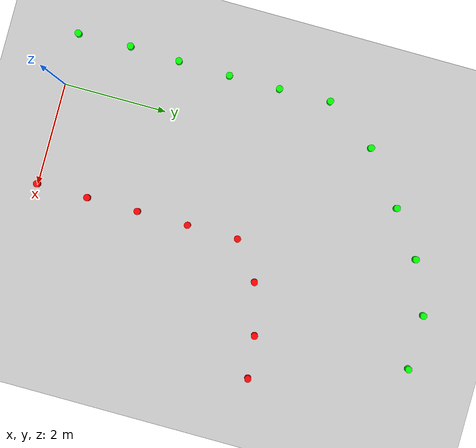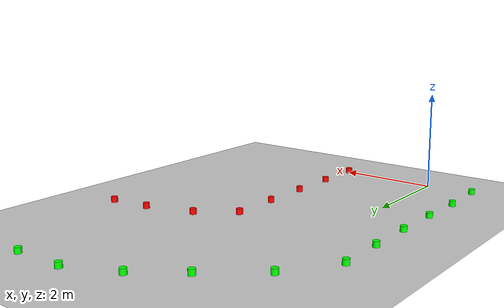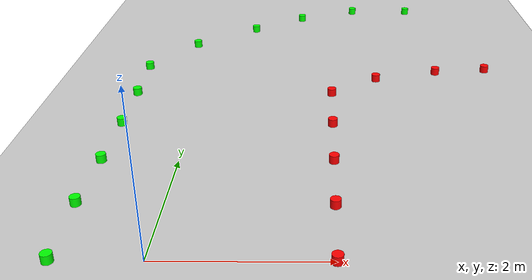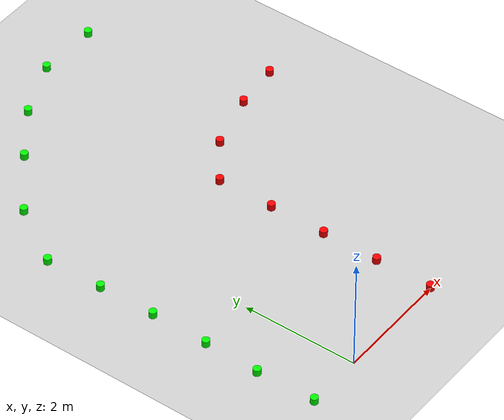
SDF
<sdf version="1.7">
 <world name="default">
  <light name="sun" type="directional">
   <pose>0 0 10 0 -0 0</pose>
   <diffuse>0.8 0.8 0.8 1</diffuse>
   <specular>0.2 0.2 0.2 1</specular>
   <attenuation>
    <range>1000</range>
    <constant>0.9</constant>
    <linear>0.01</linear>
    <quadratic>0.001</quadratic>
   </attenuation>
   <direction>-0.5 0.1 -0.9</direction>
   <spot><inner_angle>0</inner_angle><outer_angle>0</outer_angle><falloff>0</falloff></spot>
  </light>
  <model name="ground_plane">
   <static>1</static>
   <link name="link">
    <collision name="collision">
     <geometry><plane><normal>0 0 1</normal><size>100 100</size></plane></geometry>
     <surface>
      <contact><collide_bitmask>65535</collide_bitmask></contact>
      <friction><ode><mu>100</mu><mu2>50</mu2></ode></friction>
     </surface>
    </collision>
    <visual name="visual">
     <cast_shadows>0</cast_shadows>
     <geometry><plane><normal>0 0 1</normal><size>100 100</size></plane></geometry>
     <material>
      <script><uri>file://media/materials/scripts/gazebo.material</uri><name>Gazebo/Grey</name></script>
     </material>
    </visual>
   </link>
  </model>
  <model name="latinha_verm">
   <link name="link">
    <inertial>
     <mass>1</mass>
     <inertia><ixx>0.145833</ixx><ixy>0</ixy><ixz>0</ixz><iyy>0.145833</iyy><iyz>0</iyz><izz>0.125</izz></inertia>
    </inertial>
    <visual name="visual">
     <geometry><cylinder><radius>0.066</radius><length>0.114</length></cylinder></geometry>
     <material>
      <script><name>Gazebo/Gray</name><uri>file://media/materials/scripts/gazebo.material</uri></script>
      <shader type="pixel"><normal_map>__default__</normal_map></shader>
      <ambient>1 0 0 1</ambient>
      <diffuse>1 0 0 1</diffuse>
      <specular>0.1 0.1 0.1 1</specular>
      <emissive>0 0 0 1</emissive>
     </material>
    </visual>
    <collision name="collision">
     <geometry><cylinder><radius>0.05</radius><length>0.1</length></cylinder></geometry>
     <surface>
      <friction>
       <ode><mu>1</mu><mu2>1</mu2><fdir1>0 0 0</fdir1><slip1>0</slip1><slip2>0</slip2></ode>
       <torsional>
        <coefficient>1</coefficient>
        <patch_radius>0</patch_radius>
        <surface_radius>0</surface_radius>
        <use_patch_radius>1</use_patch_radius>
        <ode><slip>0</slip></ode>
       </torsional>
      </friction>
      <bounce><restitution_coefficient>0</restitution_coefficient><threshold>1e+06</threshold></bounce>
      <contact>
       <collide_without_contact>0</collide_without_contact>
       <collide_without_contact_bitmask>1</collide_without_contact_bitmask>
       <collide_bitmask>1</collide_bitmask>
       <ode>
        <soft_cfm>0</soft_cfm>
        <soft_erp>0.2</soft_erp>
        <kp>1e+13</kp>
        <kd>1</kd>
        <max_vel>0.01</max_vel>
        <min_depth>0</min_depth>
       </ode>
       <bullet>
        <split_impulse>1</split_impulse>
        <split_impulse_penetration_threshold>-0.01</split_impulse_penetration_threshold>
        <soft_cfm>0</soft_cfm>
        <soft_erp>0.2</soft_erp>
        <kp>1e+13</kp>
        <kd>1</kd>
       </bullet>
      </contact>
     </surface>
    </collision>
   </link>
   <static>0</static>
   <pose>3.70951 4.81025 0.04999 0 -0 3e-05</pose>
  </model>
  <model name="latinha_verde">
   <link name="link">
    <inertial>
     <mass>1</mass>
     <inertia><ixx>0.145833</ixx><ixy>0</ixy><ixz>0</ixz><iyy>0.145833</iyy><iyz>0</iyz><izz>0.125</izz></inertia>
    </inertial>
    <visual name="visual">
     <geometry><cylinder><radius>0.066</radius><length>0.114</length></cylinder></geometry>
     <material>
      <script><name>Gazebo/Gray</name><uri>file://media/materials/scripts/gazebo.material</uri></script>
      <shader type="pixel"><normal_map>__default__</normal_map></shader>
      <ambient>0 1 0 1</ambient>
      <diffuse>0 1 0 1</diffuse>
      <specular>0.1 0.1 0.1 1</specular>
      <emissive>0 0 0 1</emissive>
     </material>
    </visual>
    <collision name="collision">
     <geometry><cylinder><radius>0.05</radius><length>0.1</length></cylinder></geometry>
     <surface>
      <friction>
       <ode><mu>1</mu><mu2>1</mu2><fdir1>0 0 0</fdir1><slip1>0</slip1><slip2>0</slip2></ode>
       <torsional>
        <coefficient>1</coefficient>
        <patch_radius>0</patch_radius>
        <surface_radius>0</surface_radius>
        <use_patch_radius>1</use_patch_radius>
        <ode><slip>0</slip></ode>
       </torsional>
      </friction>
      <bounce><restitution_coefficient>0</restitution_coefficient><threshold>1e+06</threshold></bounce>
      <contact>
       <collide_without_contact>0</collide_without_contact>
       <collide_without_contact_bitmask>1</collide_without_contact_bitmask>
       <collide_bitmask>1</collide_bitmask>
       <ode>
        <soft_cfm>0</soft_cfm>
        <soft_erp>0.2</soft_erp>
        <kp>1e+13</kp>
        <kd>1</kd>
        <max_vel>0.01</max_vel>
        <min_depth>0</min_depth>
       </ode>
       <bullet>
        <split_impulse>1</split_impulse>
        <split_impulse_penetration_threshold>-0.01</split_impulse_penetration_threshold>
        <soft_cfm>0</soft_cfm>
        <soft_erp>0.2</soft_erp>
        <kp>1e+13</kp>
        <kd>1</kd>
       </bullet>
      </contact>
     </surface>
    </collision>
   </link>
   <static>0</static>
   <pose>2.47505 7.83889 0.04999 0 -0 7.4e-05</pose>
  </model>
  <gravity>0 0 -9.8</gravity>
  <magnetic_field>6e-06 2.3e-05 -4.2e-05</magnetic_field>
  <atmosphere type="adiabatic"/>
  <physics type="ode">
   <max_step_size>0.001</max_step_size>
   <real_time_factor>1</real_time_factor>
   <real_time_update_rate>1000</real_time_update_rate>
  </physics>
  <scene><ambient>0.4 0.4 0.4 1</ambient><background>0.7 0.7 0.7 1</background><shadows>1</shadows></scene>
  <spherical_coordinates>
   <surface_model>EARTH_WGS84</surface_model>
   <latitude_deg>0</latitude_deg>
   <longitude_deg>0</longitude_deg>
   <elevation>0</elevation>
   <heading_deg>0</heading_deg>
  </spherical_coordinates>
  <model name="latinha_verm_clone">
   <link name="link">
    <inertial>
     <mass>1</mass>
     <inertia><ixx>0.145833</ixx><ixy>0</ixy><ixz>0</ixz><iyy>0.145833</iyy><iyz>0</iyz><izz>0.125</izz></inertia>
    </inertial>
    <visual name="visual">
     <geometry><cylinder><radius>0.066</radius><length>0.114</length></cylinder></geometry>
     <material>
      <script><name>Gazebo/Gray</name><uri>file://media/materials/scripts/gazebo.material</uri></script>
      <shader type="pixel"><normal_map>__default__</normal_map></shader>
      <ambient>1 0 0 1</ambient>
      <diffuse>1 0 0 1</diffuse>
      <specular>0.1 0.1 0.1 1</specular>
      <emissive>0 0 0 1</emissive>
     </material>
    </visual>
    <collision name="collision">
     <geometry><cylinder><radius>0.05</radius><length>0.1</length></cylinder></geometry>
     <surface>
      <friction>
       <ode><mu>1</mu><mu2>1</mu2><fdir1>0 0 0</fdir1><slip1>0</slip1><slip2>0</slip2></ode>
       <torsional>
        <coefficient>1</coefficient>
        <patch_radius>0</patch_radius>
        <surface_radius>0</surface_radius>
        <use_patch_radius>1</use_patch_radius>
        <ode><slip>0</slip></ode>
       </torsional>
      </friction>
      <bounce><restitution_coefficient>0</restitution_coefficient><threshold>1e+06</threshold></bounce>
      <contact>
       <collide_without_contact>0</collide_without_contact>
       <collide_without_contact_bitmask>1</collide_without_contact_bitmask>
       <collide_bitmask>1</collide_bitmask>
       <ode>
        <soft_cfm>0</soft_cfm>
        <soft_erp>0.2</soft_erp>
        <kp>1e+13</kp>
        <kd>1</kd>
        <max_vel>0.01</max_vel>
        <min_depth>0</min_depth>
       </ode>
       <bullet>
        <split_impulse>1</split_impulse>
        <split_impulse_penetration_threshold>-0.01</split_impulse_penetration_threshold>
        <soft_cfm>0</soft_cfm>
        <soft_erp>0.2</soft_erp>
        <kp>1e+13</kp>
        <kd>1</kd>
       </bullet>
      </contact>
     </surface>
    </collision>
   </link>
   <static>0</static>
   <pose>2 0 0.049995 0 -0 3.3e-05</pose>
  </model>
  <model name="latinha_verm_clone_0">
   <link name="link">
    <inertial>
     <mass>1</mass>
     <inertia><ixx>0.145833</ixx><ixy>0</ixy><ixz>0</ixz><iyy>0.145833</iyy><iyz>0</iyz><izz>0.125</izz></inertia>
    </inertial>
    <visual name="visual">
     <geometry><cylinder><radius>0.066</radius><length>0.114</length></cylinder></geometry>
     <material>
      <script><name>Gazebo/Gray</name><uri>file://media/materials/scripts/gazebo.material</uri></script>
      <shader type="pixel"><normal_map>__default__</normal_map></shader>
      <ambient>1 0 0 1</ambient>
      <diffuse>1 0 0 1</diffuse>
      <specular>0.1 0.1 0.1 1</specular>
      <emissive>0 0 0 1</emissive>
     </material>
    </visual>
    <collision name="collision">
     <geometry><cylinder><radius>0.05</radius><length>0.1</length></cylinder></geometry>
     <surface>
      <friction>
       <ode><mu>1</mu><mu2>1</mu2><fdir1>0 0 0</fdir1><slip1>0</slip1><slip2>0</slip2></ode>
       <torsional>
        <coefficient>1</coefficient>
        <patch_radius>0</patch_radius>
        <surface_radius>0</surface_radius>
        <use_patch_radius>1</use_patch_radius>
        <ode><slip>0</slip></ode>
       </torsional>
      </friction>
      <bounce><restitution_coefficient>0</restitution_coefficient><threshold>1e+06</threshold></bounce>
      <contact>
       <collide_without_contact>0</collide_without_contact>
       <collide_without_contact_bitmask>1</collide_without_contact_bitmask>
       <collide_bitmask>1</collide_bitmask>
       <ode>
        <soft_cfm>0</soft_cfm>
        <soft_erp>0.2</soft_erp>
        <kp>1e+13</kp>
        <kd>1</kd>
        <max_vel>0.01</max_vel>
        <min_depth>0</min_depth>
       </ode>
       <bullet>
        <split_impulse>1</split_impulse>
        <split_impulse_penetration_threshold>-0.01</split_impulse_penetration_threshold>
        <soft_cfm>0</soft_cfm>
        <soft_erp>0.2</soft_erp>
        <kp>1e+13</kp>
        <kd>1</kd>
       </bullet>
      </contact>
     </surface>
    </collision>
   </link>
   <static>0</static>
   <pose>2 1 0.049995 0 -0 8.9e-05</pose>
  </model>
  <model name="latinha_verm_clone_1">
   <link name="link">
    <inertial>
     <mass>1</mass>
     <inertia><ixx>0.145833</ixx><ixy>0</ixy><ixz>0</ixz><iyy>0.145833</iyy><iyz>0</iyz><izz>0.125</izz></inertia>
    </inertial>
    <visual name="visual">
     <geometry><cylinder><radius>0.066</radius><length>0.114</length></cylinder></geometry>
     <material>
      <script><name>Gazebo/Gray</name><uri>file://media/materials/scripts/gazebo.material</uri></script>
      <shader type="pixel"><normal_map>__default__</normal_map></shader>
      <ambient>1 0 0 1</ambient>
      <diffuse>1 0 0 1</diffuse>
      <specular>0.1 0.1 0.1 1</specular>
      <emissive>0 0 0 1</emissive>
     </material>
    </visual>
    <collision name="collision">
     <geometry><cylinder><radius>0.05</radius><length>0.1</length></cylinder></geometry>
     <surface>
      <friction>
       <ode><mu>1</mu><mu2>1</mu2><fdir1>0 0 0</fdir1><slip1>0</slip1><slip2>0</slip2></ode>
       <torsional>
        <coefficient>1</coefficient>
        <patch_radius>0</patch_radius>
        <surface_radius>0</surface_radius>
        <use_patch_radius>1</use_patch_radius>
        <ode><slip>0</slip></ode>
       </torsional>
      </friction>
      <bounce><restitution_coefficient>0</restitution_coefficient><threshold>1e+06</threshold></bounce>
      <contact>
       <collide_without_contact>0</collide_without_contact>
       <collide_without_contact_bitmask>1</collide_without_contact_bitmask>
       <collide_bitmask>1</collide_bitmask>
       <ode>
        <soft_cfm>0</soft_cfm>
        <soft_erp>0.2</soft_erp>
        <kp>1e+13</kp>
        <kd>1</kd>
        <max_vel>0.01</max_vel>
        <min_depth>0</min_depth>
       </ode>
       <bullet>
        <split_impulse>1</split_impulse>
        <split_impulse_penetration_threshold>-0.01</split_impulse_penetration_threshold>
        <soft_cfm>0</soft_cfm>
        <soft_erp>0.2</soft_erp>
        <kp>1e+13</kp>
        <kd>1</kd>
       </bullet>
      </contact>
     </surface>
    </collision>
   </link>
   <static>0</static>
   <pose>2 2 0.049994 0 -0 8.5e-05</pose>
  </model>
  <model name="latinha_verm_clone_2">
   <link name="link">
    <inertial>
     <mass>1</mass>
     <inertia><ixx>0.145833</ixx><ixy>0</ixy><ixz>0</ixz><iyy>0.145833</iyy><iyz>0</iyz><izz>0.125</izz></inertia>
    </inertial>
    <visual name="visual">
     <geometry><cylinder><radius>0.066</radius><length>0.114</length></cylinder></geometry>
     <material>
      <script><name>Gazebo/Gray</name><uri>file://media/materials/scripts/gazebo.material</uri></script>
      <shader type="pixel"><normal_map>__default__</normal_map></shader>
      <ambient>1 0 0 1</ambient>
      <diffuse>1 0 0 1</diffuse>
      <specular>0.1 0.1 0.1 1</specular>
      <emissive>0 0 0 1</emissive>
     </material>
    </visual>
    <collision name="collision">
     <geometry><cylinder><radius>0.05</radius><length>0.1</length></cylinder></geometry>
     <surface>
      <friction>
       <ode><mu>1</mu><mu2>1</mu2><fdir1>0 0 0</fdir1><slip1>0</slip1><slip2>0</slip2></ode>
       <torsional>
        <coefficient>1</coefficient>
        <patch_radius>0</patch_radius>
        <surface_radius>0</surface_radius>
        <use_patch_radius>1</use_patch_radius>
        <ode><slip>0</slip></ode>
       </torsional>
      </friction>
      <bounce><restitution_coefficient>0</restitution_coefficient><threshold>1e+06</threshold></bounce>
      <contact>
       <collide_without_contact>0</collide_without_contact>
       <collide_without_contact_bitmask>1</collide_without_contact_bitmask>
       <collide_bitmask>1</collide_bitmask>
       <ode>
        <soft_cfm>0</soft_cfm>
        <soft_erp>0.2</soft_erp>
        <kp>1e+13</kp>
        <kd>1</kd>
        <max_vel>0.01</max_vel>
        <min_depth>0</min_depth>
       </ode>
       <bullet>
        <split_impulse>1</split_impulse>
        <split_impulse_penetration_threshold>-0.01</split_impulse_penetration_threshold>
        <soft_cfm>0</soft_cfm>
        <soft_erp>0.2</soft_erp>
        <kp>1e+13</kp>
        <kd>1</kd>
       </bullet>
      </contact>
     </surface>
    </collision>
   </link>
   <static>0</static>
   <pose>2 3 0.04999 0 -0 0.000117</pose>
  </model>
  <model name="latinha_verm_clone_3">
   <link name="link">
    <inertial>
     <mass>1</mass>
     <inertia><ixx>0.145833</ixx><ixy>0</ixy><ixz>0</ixz><iyy>0.145833</iyy><iyz>0</iyz><izz>0.125</izz></inertia>
    </inertial>
    <visual name="visual">
     <geometry><cylinder><radius>0.066</radius><length>0.114</length></cylinder></geometry>
     <material>
      <script><name>Gazebo/Gray</name><uri>file://media/materials/scripts/gazebo.material</uri></script>
      <shader type="pixel"><normal_map>__default__</normal_map></shader>
      <ambient>1 0 0 1</ambient>
      <diffuse>1 0 0 1</diffuse>
      <specular>0.1 0.1 0.1 1</specular>
      <emissive>0 0 0 1</emissive>
     </material>
    </visual>
    <collision name="collision">
     <geometry><cylinder><radius>0.05</radius><length>0.1</length></cylinder></geometry>
     <surface>
      <friction>
       <ode><mu>1</mu><mu2>1</mu2><fdir1>0 0 0</fdir1><slip1>0</slip1><slip2>0</slip2></ode>
       <torsional>
        <coefficient>1</coefficient>
        <patch_radius>0</patch_radius>
        <surface_radius>0</surface_radius>
        <use_patch_radius>1</use_patch_radius>
        <ode><slip>0</slip></ode>
       </torsional>
      </friction>
      <bounce><restitution_coefficient>0</restitution_coefficient><threshold>1e+06</threshold></bounce>
      <contact>
       <collide_without_contact>0</collide_without_contact>
       <collide_without_contact_bitmask>1</collide_without_contact_bitmask>
       <collide_bitmask>1</collide_bitmask>
       <ode>
        <soft_cfm>0</soft_cfm>
        <soft_erp>0.2</soft_erp>
        <kp>1e+13</kp>
        <kd>1</kd>
        <max_vel>0.01</max_vel>
        <min_depth>0</min_depth>
       </ode>
       <bullet>
        <split_impulse>1</split_impulse>
        <split_impulse_penetration_threshold>-0.01</split_impulse_penetration_threshold>
        <soft_cfm>0</soft_cfm>
        <soft_erp>0.2</soft_erp>
        <kp>1e+13</kp>
        <kd>1</kd>
       </bullet>
      </contact>
     </surface>
    </collision>
   </link>
   <static>0</static>
   <pose>2 4 0.05 0 -0 0.000124</pose>
  </model>
  <model name="latinha_verm_clone_4">
   <link name="link">
    <inertial>
     <mass>1</mass>
     <inertia><ixx>0.145833</ixx><ixy>0</ixy><ixz>0</ixz><iyy>0.145833</iyy><iyz>0</iyz><izz>0.125</izz></inertia>
    </inertial>
    <visual name="visual">
     <geometry><cylinder><radius>0.066</radius><length>0.114</length></cylinder></geometry>
     <material>
      <script><name>Gazebo/Gray</name><uri>file://media/materials/scripts/gazebo.material</uri></script>
      <shader type="pixel"><normal_map>__default__</normal_map></shader>
      <ambient>1 0 0 1</ambient>
      <diffuse>1 0 0 1</diffuse>
      <specular>0.1 0.1 0.1 1</specular>
      <emissive>0 0 0 1</emissive>
     </material>
    </visual>
    <collision name="collision">
     <geometry><cylinder><radius>0.05</radius><length>0.1</length></cylinder></geometry>
     <surface>
      <friction>
       <ode><mu>1</mu><mu2>1</mu2><fdir1>0 0 0</fdir1><slip1>0</slip1><slip2>0</slip2></ode>
       <torsional>
        <coefficient>1</coefficient>
        <patch_radius>0</patch_radius>
        <surface_radius>0</surface_radius>
        <use_patch_radius>1</use_patch_radius>
        <ode><slip>0</slip></ode>
       </torsional>
      </friction>
      <bounce><restitution_coefficient>0</restitution_coefficient><threshold>1e+06</threshold></bounce>
      <contact>
       <collide_without_contact>0</collide_without_contact>
       <collide_without_contact_bitmask>1</collide_without_contact_bitmask>
       <collide_bitmask>1</collide_bitmask>
       <ode>
        <soft_cfm>0</soft_cfm>
        <soft_erp>0.2</soft_erp>
        <kp>1e+13</kp>
        <kd>1</kd>
        <max_vel>0.01</max_vel>
        <min_depth>0</min_depth>
       </ode>
       <bullet>
        <split_impulse>1</split_impulse>
        <split_impulse_penetration_threshold>-0.01</split_impulse_penetration_threshold>
        <soft_cfm>0</soft_cfm>
        <soft_erp>0.2</soft_erp>
        <kp>1e+13</kp>
        <kd>1</kd>
       </bullet>
      </contact>
     </surface>
    </collision>
   </link>
   <static>0</static>
   <pose>2.71601 4.53432 0.049991 0 -0 0.000121</pose>
  </model>
  <model name="latinha_verde_clone">
   <link name="link">
    <inertial>
     <mass>1</mass>
     <inertia><ixx>0.145833</ixx><ixy>0</ixy><ixz>0</ixz><iyy>0.145833</iyy><iyz>0</iyz><izz>0.125</izz></inertia>
    </inertial>
    <visual name="visual">
     <geometry><cylinder><radius>0.066</radius><length>0.114</length></cylinder></geometry>
     <material>
      <script><name>Gazebo/Gray</name><uri>file://media/materials/scripts/gazebo.material</uri></script>
      <shader type="pixel"><normal_map>__default__</normal_map></shader>
      <ambient>0 1 0 1</ambient>
      <diffuse>0 1 0 1</diffuse>
      <specular>0.1 0.1 0.1 1</specular>
      <emissive>0 0 0 1</emissive>
     </material>
    </visual>
    <collision name="collision">
     <geometry><cylinder><radius>0.05</radius><length>0.1</length></cylinder></geometry>
     <surface>
      <friction>
       <ode><mu>1</mu><mu2>1</mu2><fdir1>0 0 0</fdir1><slip1>0</slip1><slip2>0</slip2></ode>
       <torsional>
        <coefficient>1</coefficient>
        <patch_radius>0</patch_radius>
        <surface_radius>0</surface_radius>
        <use_patch_radius>1</use_patch_radius>
        <ode><slip>0</slip></ode>
       </torsional>
      </friction>
      <bounce><restitution_coefficient>0</restitution_coefficient><threshold>1e+06</threshold></bounce>
      <contact>
       <collide_without_contact>0</collide_without_contact>
       <collide_without_contact_bitmask>1</collide_without_contact_bitmask>
       <collide_bitmask>1</collide_bitmask>
       <ode>
        <soft_cfm>0</soft_cfm>
        <soft_erp>0.2</soft_erp>
        <kp>1e+13</kp>
        <kd>1</kd>
        <max_vel>0.01</max_vel>
        <min_depth>0</min_depth>
       </ode>
       <bullet>
        <split_impulse>1</split_impulse>
        <split_impulse_penetration_threshold>-0.01</split_impulse_penetration_threshold>
        <soft_cfm>0</soft_cfm>
        <soft_erp>0.2</soft_erp>
        <kp>1e+13</kp>
        <kd>1</kd>
       </bullet>
      </contact>
     </surface>
    </collision>
   </link>
   <static>0</static>
   <pose>-1 0 0.049996 0 -0 8.5e-05</pose>
  </model>
  <model name="latinha_verde_clone_0">
   <link name="link">
    <inertial>
     <mass>1</mass>
     <inertia><ixx>0.145833</ixx><ixy>0</ixy><ixz>0</ixz><iyy>0.145833</iyy><iyz>0</iyz><izz>0.125</izz></inertia>
    </inertial>
    <visual name="visual">
     <geometry><cylinder><radius>0.066</radius><length>0.114</length></cylinder></geometry>
     <material>
      <script><name>Gazebo/Gray</name><uri>file://media/materials/scripts/gazebo.material</uri></script>
      <shader type="pixel"><normal_map>__default__</normal_map></shader>
      <ambient>0 1 0 1</ambient>
      <diffuse>0 1 0 1</diffuse>
      <specular>0.1 0.1 0.1 1</specular>
      <emissive>0 0 0 1</emissive>
     </material>
    </visual>
    <collision name="collision">
     <geometry><cylinder><radius>0.05</radius><length>0.1</length></cylinder></geometry>
     <surface>
      <friction>
       <ode><mu>1</mu><mu2>1</mu2><fdir1>0 0 0</fdir1><slip1>0</slip1><slip2>0</slip2></ode>
       <torsional>
        <coefficient>1</coefficient>
        <patch_radius>0</patch_radius>
        <surface_radius>0</surface_radius>
        <use_patch_radius>1</use_patch_radius>
        <ode><slip>0</slip></ode>
       </torsional>
      </friction>
      <bounce><restitution_coefficient>0</restitution_coefficient><threshold>1e+06</threshold></bounce>
      <contact>
       <collide_without_contact>0</collide_without_contact>
       <collide_without_contact_bitmask>1</collide_without_contact_bitmask>
       <collide_bitmask>1</collide_bitmask>
       <ode>
        <soft_cfm>0</soft_cfm>
        <soft_erp>0.2</soft_erp>
        <kp>1e+13</kp>
        <kd>1</kd>
        <max_vel>0.01</max_vel>
        <min_depth>0</min_depth>
       </ode>
       <bullet>
        <split_impulse>1</split_impulse>
        <split_impulse_penetration_threshold>-0.01</split_impulse_penetration_threshold>
        <soft_cfm>0</soft_cfm>
        <soft_erp>0.2</soft_erp>
        <kp>1e+13</kp>
        <kd>1</kd>
       </bullet>
      </contact>
     </surface>
    </collision>
   </link>
   <static>0</static>
   <pose>-1.02906 1.03191 0.049996 0 -0 7.3e-05</pose>
  </model>
  <model name="latinha_verde_clone_1">
   <link name="link">
    <inertial>
     <mass>1</mass>
     <inertia><ixx>0.145833</ixx><ixy>0</ixy><ixz>0</ixz><iyy>0.145833</iyy><iyz>0</iyz><izz>0.125</izz></inertia>
    </inertial>
    <visual name="visual">
     <geometry><cylinder><radius>0.066</radius><length>0.114</length></cylinder></geometry>
     <material>
      <script><name>Gazebo/Gray</name><uri>file://media/materials/scripts/gazebo.material</uri></script>
      <shader type="pixel"><normal_map>__default__</normal_map></shader>
      <ambient>0 1 0 1</ambient>
      <diffuse>0 1 0 1</diffuse>
      <specular>0.1 0.1 0.1 1</specular>
      <emissive>0 0 0 1</emissive>
     </material>
    </visual>
    <collision name="collision">
     <geometry><cylinder><radius>0.05</radius><length>0.1</length></cylinder></geometry>
     <surface>
      <friction>
       <ode><mu>1</mu><mu2>1</mu2><fdir1>0 0 0</fdir1><slip1>0</slip1><slip2>0</slip2></ode>
       <torsional>
        <coefficient>1</coefficient>
        <patch_radius>0</patch_radius>
        <surface_radius>0</surface_radius>
        <use_patch_radius>1</use_patch_radius>
        <ode><slip>0</slip></ode>
       </torsional>
      </friction>
      <bounce><restitution_coefficient>0</restitution_coefficient><threshold>1e+06</threshold></bounce>
      <contact>
       <collide_without_contact>0</collide_without_contact>
       <collide_without_contact_bitmask>1</collide_without_contact_bitmask>
       <collide_bitmask>1</collide_bitmask>
       <ode>
        <soft_cfm>0</soft_cfm>
        <soft_erp>0.2</soft_erp>
        <kp>1e+13</kp>
        <kd>1</kd>
        <max_vel>0.01</max_vel>
        <min_depth>0</min_depth>
       </ode>
       <bullet>
        <split_impulse>1</split_impulse>
        <split_impulse_penetration_threshold>-0.01</split_impulse_penetration_threshold>
        <soft_cfm>0</soft_cfm>
        <soft_erp>0.2</soft_erp>
        <kp>1e+13</kp>
        <kd>1</kd>
       </bullet>
      </contact>
     </surface>
    </collision>
   </link>
   <static>0</static>
   <pose>-1.00145 2.00429 0.05 0 -0 0.000105</pose>
  </model>
  <model name="latinha_verde_clone_2">
   <link name="link">
    <inertial>
     <mass>1</mass>
     <inertia><ixx>0.145833</ixx><ixy>0</ixy><ixz>0</ixz><iyy>0.145833</iyy><iyz>0</iyz><izz>0.125</izz></inertia>
    </inertial>
    <visual name="visual">
     <geometry><cylinder><radius>0.066</radius><length>0.114</length></cylinder></geometry>
     <material>
      <script><name>Gazebo/Gray</name><uri>file://media/materials/scripts/gazebo.material</uri></script>
      <shader type="pixel"><normal_map>__default__</normal_map></shader>
      <ambient>0 1 0 1</ambient>
      <diffuse>0 1 0 1</diffuse>
      <specular>0.1 0.1 0.1 1</specular>
      <emissive>0 0 0 1</emissive>
     </material>
    </visual>
    <collision name="collision">
     <geometry><cylinder><radius>0.05</radius><length>0.1</length></cylinder></geometry>
     <surface>
      <friction>
       <ode><mu>1</mu><mu2>1</mu2><fdir1>0 0 0</fdir1><slip1>0</slip1><slip2>0</slip2></ode>
       <torsional>
        <coefficient>1</coefficient>
        <patch_radius>0</patch_radius>
        <surface_radius>0</surface_radius>
        <use_patch_radius>1</use_patch_radius>
        <ode><slip>0</slip></ode>
       </torsional>
      </friction>
      <bounce><restitution_coefficient>0</restitution_coefficient><threshold>1e+06</threshold></bounce>
      <contact>
       <collide_without_contact>0</collide_without_contact>
       <collide_without_contact_bitmask>1</collide_without_contact_bitmask>
       <collide_bitmask>1</collide_bitmask>
       <ode>
        <soft_cfm>0</soft_cfm>
        <soft_erp>0.2</soft_erp>
        <kp>1e+13</kp>
        <kd>1</kd>
        <max_vel>0.01</max_vel>
        <min_depth>0</min_depth>
       </ode>
       <bullet>
        <split_impulse>1</split_impulse>
        <split_impulse_penetration_threshold>-0.01</split_impulse_penetration_threshold>
        <soft_cfm>0</soft_cfm>
        <soft_erp>0.2</soft_erp>
        <kp>1e+13</kp>
        <kd>1</kd>
       </bullet>
      </contact>
     </surface>
    </collision>
   </link>
   <static>0</static>
   <pose>-0.989341 3.01541 0.049994 0 -0 6.8e-05</pose>
  </model>
  <model name="latinha_verde_clone_3">
   <link name="link">
    <inertial>
     <mass>1</mass>
     <inertia><ixx>0.145833</ixx><ixy>0</ixy><ixz>0</ixz><iyy>0.145833</iyy><iyz>0</iyz><izz>0.125</izz></inertia>
    </inertial>
    <visual name="visual">
     <geometry><cylinder><radius>0.066</radius><length>0.114</length></cylinder></geometry>
     <material>
      <script><name>Gazebo/Gray</name><uri>file://media/materials/scripts/gazebo.material</uri></script>
      <shader type="pixel"><normal_map>__default__</normal_map></shader>
      <ambient>0 1 0 1</ambient>
      <diffuse>0 1 0 1</diffuse>
      <specular>0.1 0.1 0.1 1</specular>
      <emissive>0 0 0 1</emissive>
     </material>
    </visual>
    <collision name="collision">
     <geometry><cylinder><radius>0.05</radius><length>0.1</length></cylinder></geometry>
     <surface>
      <friction>
       <ode><mu>1</mu><mu2>1</mu2><fdir1>0 0 0</fdir1><slip1>0</slip1><slip2>0</slip2></ode>
       <torsional>
        <coefficient>1</coefficient>
        <patch_radius>0</patch_radius>
        <surface_radius>0</surface_radius>
        <use_patch_radius>1</use_patch_radius>
        <ode><slip>0</slip></ode>
       </torsional>
      </friction>
      <bounce><restitution_coefficient>0</restitution_coefficient><threshold>1e+06</threshold></bounce>
      <contact>
       <collide_without_contact>0</collide_without_contact>
       <collide_without_contact_bitmask>1</collide_without_contact_bitmask>
       <collide_bitmask>1</collide_bitmask>
       <ode>
        <soft_cfm>0</soft_cfm>
        <soft_erp>0.2</soft_erp>
        <kp>1e+13</kp>
        <kd>1</kd>
        <max_vel>0.01</max_vel>
        <min_depth>0</min_depth>
       </ode>
       <bullet>
        <split_impulse>1</split_impulse>
        <split_impulse_penetration_threshold>-0.01</split_impulse_penetration_threshold>
        <soft_cfm>0</soft_cfm>
        <soft_erp>0.2</soft_erp>
        <kp>1e+13</kp>
        <kd>1</kd>
       </bullet>
      </contact>
     </surface>
    </collision>
   </link>
   <static>0</static>
   <pose>-0.99862 4.01189 0.04999 0 -0 9.6e-05</pose>
  </model>
  <model name="latinha_verde_clone_4">
   <link name="link">
    <inertial>
     <mass>1</mass>
     <inertia><ixx>0.145833</ixx><ixy>0</ixy><ixz>0</ixz><iyy>0.145833</iyy><iyz>0</iyz><izz>0.125</izz></inertia>
    </inertial>
    <visual name="visual">
     <geometry><cylinder><radius>0.066</radius><length>0.114</length></cylinder></geometry>
     <material>
      <script><name>Gazebo/Gray</name><uri>file://media/materials/scripts/gazebo.material</uri></script>
      <shader type="pixel"><normal_map>__default__</normal_map></shader>
      <ambient>0 1 0 1</ambient>
      <diffuse>0 1 0 1</diffuse>
      <specular>0.1 0.1 0.1 1</specular>
      <emissive>0 0 0 1</emissive>
     </material>
    </visual>
    <collision name="collision">
     <geometry><cylinder><radius>0.05</radius><length>0.1</length></cylinder></geometry>
     <surface>
      <friction>
       <ode><mu>1</mu><mu2>1</mu2><fdir1>0 0 0</fdir1><slip1>0</slip1><slip2>0</slip2></ode>
       <torsional>
        <coefficient>1</coefficient>
        <patch_radius>0</patch_radius>
        <surface_radius>0</surface_radius>
        <use_patch_radius>1</use_patch_radius>
        <ode><slip>0</slip></ode>
       </torsional>
      </friction>
      <bounce><restitution_coefficient>0</restitution_coefficient><threshold>1e+06</threshold></bounce>
      <contact>
       <collide_without_contact>0</collide_without_contact>
       <collide_without_contact_bitmask>1</collide_without_contact_bitmask>
       <collide_bitmask>1</collide_bitmask>
       <ode>
        <soft_cfm>0</soft_cfm>
        <soft_erp>0.2</soft_erp>
        <kp>1e+13</kp>
        <kd>1</kd>
        <max_vel>0.01</max_vel>
        <min_depth>0</min_depth>
       </ode>
       <bullet>
        <split_impulse>1</split_impulse>
        <split_impulse_penetration_threshold>-0.01</split_impulse_penetration_threshold>
        <soft_cfm>0</soft_cfm>
        <soft_erp>0.2</soft_erp>
        <kp>1e+13</kp>
        <kd>1</kd>
       </bullet>
      </contact>
     </surface>
    </collision>
   </link>
   <static>0</static>
   <pose>-1.02625 5.01775 0.05 0 -0 9.7e-05</pose>
  </model>
  <model name="latinha_verde_clone_5">
   <link name="link">
    <inertial>
     <mass>1</mass>
     <inertia><ixx>0.145833</ixx><ixy>0</ixy><ixz>0</ixz><iyy>0.145833</iyy><iyz>0</iyz><izz>0.125</izz></inertia>
    </inertial>
    <visual name="visual">
     <geometry><cylinder><radius>0.066</radius><length>0.114</length></cylinder></geometry>
     <material>
      <script><name>Gazebo/Gray</name><uri>file://media/materials/scripts/gazebo.material</uri></script>
      <shader type="pixel"><normal_map>__default__</normal_map></shader>
      <ambient>0 1 0 1</ambient>
      <diffuse>0 1 0 1</diffuse>
      <specular>0.1 0.1 0.1 1</specular>
      <emissive>0 0 0 1</emissive>
     </material>
    </visual>
    <collision name="collision">
     <geometry><cylinder><radius>0.05</radius><length>0.1</length></cylinder></geometry>
     <surface>
      <friction>
       <ode><mu>1</mu><mu2>1</mu2><fdir1>0 0 0</fdir1><slip1>0</slip1><slip2>0</slip2></ode>
       <torsional>
        <coefficient>1</coefficient>
        <patch_radius>0</patch_radius>
        <surface_radius>0</surface_radius>
        <use_patch_radius>1</use_patch_radius>
        <ode><slip>0</slip></ode>
       </torsional>
      </friction>
      <bounce><restitution_coefficient>0</restitution_coefficient><threshold>1e+06</threshold></bounce>
      <contact>
       <collide_without_contact>0</collide_without_contact>
       <collide_without_contact_bitmask>1</collide_without_contact_bitmask>
       <collide_bitmask>1</collide_bitmask>
       <ode>
        <soft_cfm>0</soft_cfm>
        <soft_erp>0.2</soft_erp>
        <kp>1e+13</kp>
        <kd>1</kd>
        <max_vel>0.01</max_vel>
        <min_depth>0</min_depth>
       </ode>
       <bullet>
        <split_impulse>1</split_impulse>
        <split_impulse_penetration_threshold>-0.01</split_impulse_penetration_threshold>
        <soft_cfm>0</soft_cfm>
        <soft_erp>0.2</soft_erp>
        <kp>1e+13</kp>
        <kd>1</kd>
       </bullet>
      </contact>
     </surface>
    </collision>
   </link>
   <static>0</static>
   <pose>-0.371068 6.01386 0.049996 0 -0 4.5e-05</pose>
  </model>
  <model name="latinha_verde_clone_6">
   <link name="link">
    <inertial>
     <mass>1</mass>
     <inertia><ixx>0.145833</ixx><ixy>0</ixy><ixz>0</ixz><iyy>0.145833</iyy><iyz>0</iyz><izz>0.125</izz></inertia>
    </inertial>
    <visual name="visual">
     <geometry><cylinder><radius>0.066</radius><length>0.114</length></cylinder></geometry>
     <material>
      <script><name>Gazebo/Gray</name><uri>file://media/materials/scripts/gazebo.material</uri></script>
      <shader type="pixel"><normal_map>__default__</normal_map></shader>
      <ambient>0 1 0 1</ambient>
      <diffuse>0 1 0 1</diffuse>
      <specular>0.1 0.1 0.1 1</specular>
      <emissive>0 0 0 1</emissive>
     </material>
    </visual>
    <collision name="collision">
     <geometry><cylinder><radius>0.05</radius><length>0.1</length></cylinder></geometry>
     <surface>
      <friction>
       <ode><mu>1</mu><mu2>1</mu2><fdir1>0 0 0</fdir1><slip1>0</slip1><slip2>0</slip2></ode>
       <torsional>
        <coefficient>1</coefficient>
        <patch_radius>0</patch_radius>
        <surface_radius>0</surface_radius>
        <use_patch_radius>1</use_patch_radius>
        <ode><slip>0</slip></ode>
       </torsional>
      </friction>
      <bounce><restitution_coefficient>0</restitution_coefficient><threshold>1e+06</threshold></bounce>
      <contact>
       <collide_without_contact>0</collide_without_contact>
       <collide_without_contact_bitmask>1</collide_without_contact_bitmask>
       <collide_bitmask>1</collide_bitmask>
       <ode>
        <soft_cfm>0</soft_cfm>
        <soft_erp>0.2</soft_erp>
        <kp>1e+13</kp>
        <kd>1</kd>
        <max_vel>0.01</max_vel>
        <min_depth>0</min_depth>
       </ode>
       <bullet>
        <split_impulse>1</split_impulse>
        <split_impulse_penetration_threshold>-0.01</split_impulse_penetration_threshold>
        <soft_cfm>0</soft_cfm>
        <soft_erp>0.2</soft_erp>
        <kp>1e+13</kp>
        <kd>1</kd>
       </bullet>
      </contact>
     </surface>
    </collision>
   </link>
   <static>0</static>
   <pose>0.615834 6.79992 0.049995 0 -0 1e-06</pose>
  </model>
  <model name="latinha_verde_clone_7">
   <link name="link">
    <inertial>
     <mass>1</mass>
     <inertia><ixx>0.145833</ixx><ixy>0</ixy><ixz>0</ixz><iyy>0.145833</iyy><iyz>0</iyz><izz>0.125</izz></inertia>
    </inertial>
    <visual name="visual">
     <geometry><cylinder><radius>0.066</radius><length>0.114</length></cylinder></geometry>
     <material>
      <script><name>Gazebo/Gray</name><uri>file://media/materials/scripts/gazebo.material</uri></script>
      <shader type="pixel"><normal_map>__default__</normal_map></shader>
      <ambient>0 1 0 1</ambient>
      <diffuse>0 1 0 1</diffuse>
      <specular>0.1 0.1 0.1 1</specular>
      <emissive>0 0 0 1</emissive>
     </material>
    </visual>
    <collision name="collision">
     <geometry><cylinder><radius>0.05</radius><length>0.1</length></cylinder></geometry>
     <surface>
      <friction>
       <ode><mu>1</mu><mu2>1</mu2><fdir1>0 0 0</fdir1><slip1>0</slip1><slip2>0</slip2></ode>
       <torsional>
        <coefficient>1</coefficient>
        <patch_radius>0</patch_radius>
        <surface_radius>0</surface_radius>
        <use_patch_radius>1</use_patch_radius>
        <ode><slip>0</slip></ode>
       </torsional>
      </friction>
      <bounce><restitution_coefficient>0</restitution_coefficient><threshold>1e+06</threshold></bounce>
      <contact>
       <collide_without_contact>0</collide_without_contact>
       <collide_without_contact_bitmask>1</collide_without_contact_bitmask>
       <collide_bitmask>1</collide_bitmask>
       <ode>
        <soft_cfm>0</soft_cfm>
        <soft_erp>0.2</soft_erp>
        <kp>1e+13</kp>
        <kd>1</kd>
        <max_vel>0.01</max_vel>
        <min_depth>0</min_depth>
       </ode>
       <bullet>
        <split_impulse>1</split_impulse>
        <split_impulse_penetration_threshold>-0.01</split_impulse_penetration_threshold>
        <soft_cfm>0</soft_cfm>
        <soft_erp>0.2</soft_erp>
        <kp>1e+13</kp>
        <kd>1</kd>
       </bullet>
      </contact>
     </surface>
    </collision>
   </link>
   <static>0</static>
   <pose>1.47032 7.41257 0.049994 0 -0 6e-05</pose>
  </model>
  <model name="latinha_verde_clone_8">
   <link name="link">
    <inertial>
     <mass>1</mass>
     <inertia><ixx>0.145833</ixx><ixy>0</ixy><ixz>0</ixz><iyy>0.145833</iyy><iyz>0</iyz><izz>0.125</izz></inertia>
    </inertial>
    <visual name="visual">
     <geometry><cylinder><radius>0.066</radius><length>0.114</length></cylinder></geometry>
     <material>
      <script><name>Gazebo/Gray</name><uri>file://media/materials/scripts/gazebo.material</uri></script>
      <shader type="pixel"><normal_map>__default__</normal_map></shader>
      <ambient>0 1 0 1</ambient>
      <diffuse>0 1 0 1</diffuse>
      <specular>0.1 0.1 0.1 1</specular>
      <emissive>0 0 0 1</emissive>
     </material>
    </visual>
    <collision name="collision">
     <geometry><cylinder><radius>0.05</radius><length>0.1</length></cylinder></geometry>
     <surface>
      <friction>
       <ode><mu>1</mu><mu2>1</mu2><fdir1>0 0 0</fdir1><slip1>0</slip1><slip2>0</slip2></ode>
       <torsional>
        <coefficient>1</coefficient>
        <patch_radius>0</patch_radius>
        <surface_radius>0</surface_radius>
        <use_patch_radius>1</use_patch_radius>
        <ode><slip>0</slip></ode>
       </torsional>
      </friction>
      <bounce><restitution_coefficient>0</restitution_coefficient><threshold>1e+06</threshold></bounce>
      <contact>
       <collide_without_contact>0</collide_without_contact>
       <collide_without_contact_bitmask>1</collide_without_contact_bitmask>
       <collide_bitmask>1</collide_bitmask>
       <ode>
        <soft_cfm>0</soft_cfm>
        <soft_erp>0.2</soft_erp>
        <kp>1e+13</kp>
        <kd>1</kd>
        <max_vel>0.01</max_vel>
        <min_depth>0</min_depth>
       </ode>
       <bullet>
        <split_impulse>1</split_impulse>
        <split_impulse_penetration_threshold>-0.01</split_impulse_penetration_threshold>
        <soft_cfm>0</soft_cfm>
        <soft_erp>0.2</soft_erp>
        <kp>1e+13</kp>
        <kd>1</kd>
       </bullet>
      </contact>
     </surface>
    </collision>
   </link>
   <static>0</static>
   <pose>3.54294 7.83492 0.049995 -1e-06 1e-06 7.6e-05</pose>
  </model>
  <model name="latinha_verm_clone_5">
   <link name="link">
    <inertial>
     <mass>1</mass>
     <inertia><ixx>0.145833</ixx><ixy>0</ixy><ixz>0</ixz><iyy>0.145833</iyy><iyz>0</iyz><izz>0.125</izz></inertia>
    </inertial>
    <visual name="visual">
     <geometry><cylinder><radius>0.066</radius><length>0.114</length></cylinder></geometry>
     <material>
      <script><name>Gazebo/Gray</name><uri>file://media/materials/scripts/gazebo.material</uri></script>
      <shader type="pixel"><normal_map>__default__</normal_map></shader>
      <ambient>1 0 0 1</ambient>
      <diffuse>1 0 0 1</diffuse>
      <specular>0.1 0.1 0.1 1</specular>
      <emissive>0 0 0 1</emissive>
     </material>
    </visual>
    <collision name="collision">
     <geometry><cylinder><radius>0.05</radius><length>0.1</length></cylinder></geometry>
     <surface>
      <friction>
       <ode><mu>1</mu><mu2>1</mu2><fdir1>0 0 0</fdir1><slip1>0</slip1><slip2>0</slip2></ode>
       <torsional>
        <coefficient>1</coefficient>
        <patch_radius>0</patch_radius>
        <surface_radius>0</surface_radius>
        <use_patch_radius>1</use_patch_radius>
        <ode><slip>0</slip></ode>
       </torsional>
      </friction>
      <bounce><restitution_coefficient>0</restitution_coefficient><threshold>1e+06</threshold></bounce>
      <contact>
       <collide_without_contact>0</collide_without_contact>
       <collide_without_contact_bitmask>1</collide_without_contact_bitmask>
       <collide_bitmask>1</collide_bitmask>
       <ode>
        <soft_cfm>0</soft_cfm>
        <soft_erp>0.2</soft_erp>
        <kp>1e+13</kp>
        <kd>1</kd>
        <max_vel>0.01</max_vel>
        <min_depth>0</min_depth>
       </ode>
       <bullet>
        <split_impulse>1</split_impulse>
        <split_impulse_penetration_threshold>-0.01</split_impulse_penetration_threshold>
        <soft_cfm>0</soft_cfm>
        <soft_erp>0.2</soft_erp>
        <kp>1e+13</kp>
        <kd>1</kd>
       </bullet>
      </contact>
     </surface>
    </collision>
   </link>
   <static>0</static>
   <pose>4.53531 4.90445 0.04999 0 -0 9e-06</pose>
  </model>
 </world>
</sdf>
